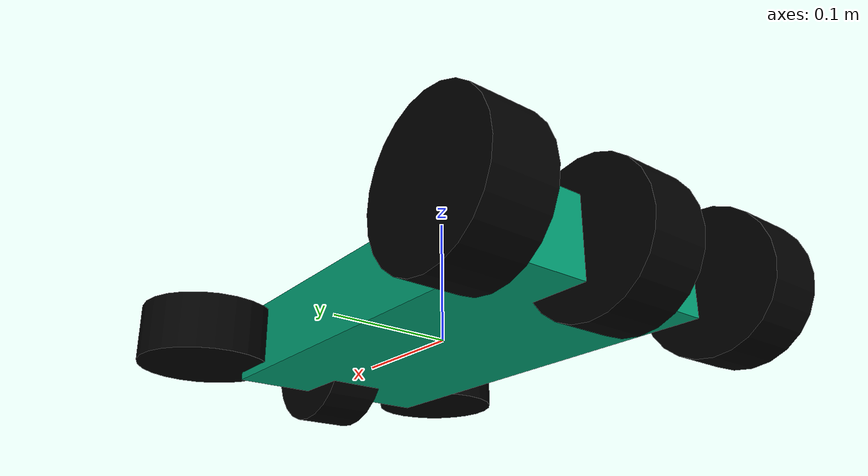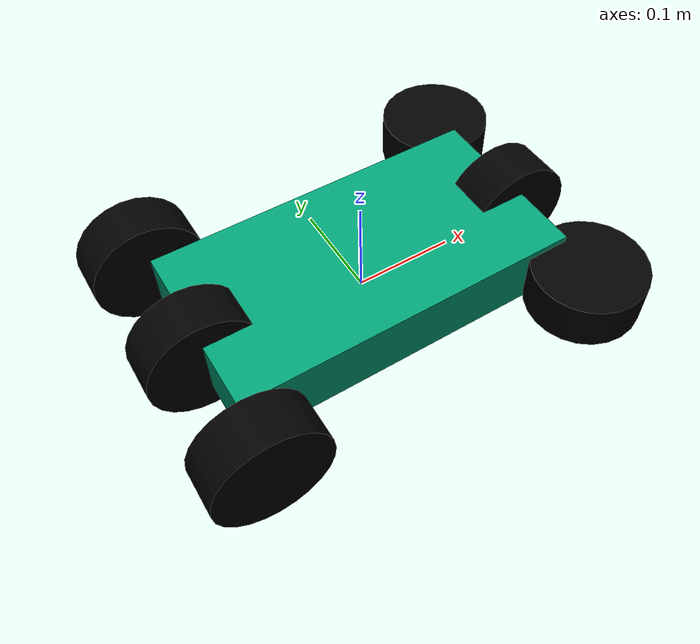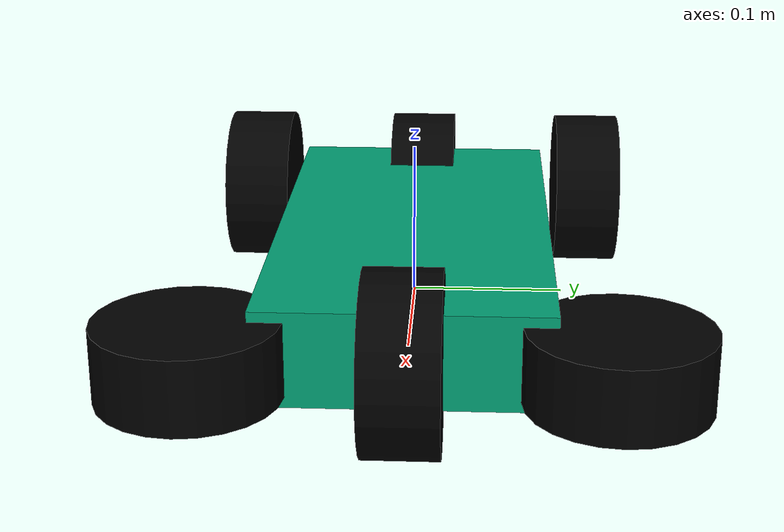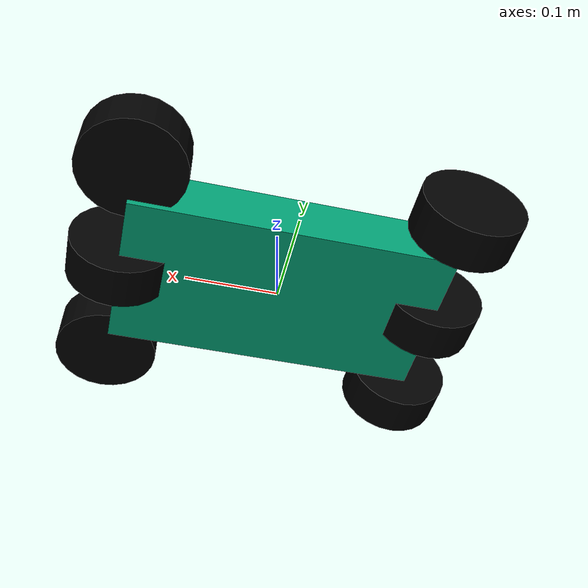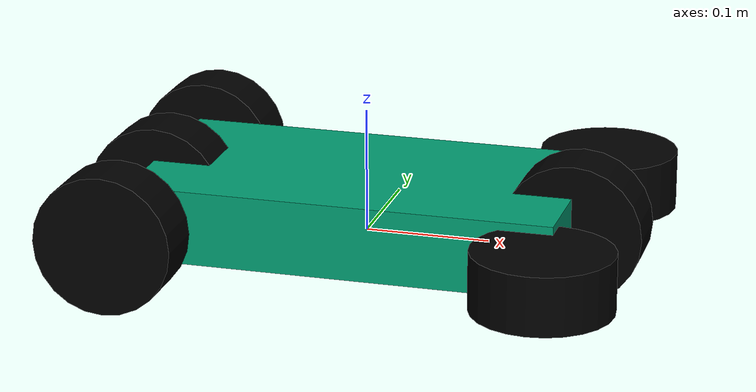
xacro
<?xml version="1.0"?>
<robot xmlns:controller="http://playerstage.sourceforge.net/gazebo/xmlschema/#controller">

  <gazebo>
    <controller:ros_p3d name="my_box_controller" plugin="libros_p3d.so">
      <alwaysOn>true</alwaysOn>
      <updateRate>100.0</updateRate>
      <bodyName>my_box</bodyName>
      <topicName>my_box_pose_ground_truth</topicName>
      <gaussianNoise>0.0</gaussianNoise>
      <frameName>my_box</frameName>
      <interface:position name="my_box_p3d_position_iface" />
    </controller:ros_p3d>
  </gazebo>

  <xacro:include filename="inertial_macros.xacro" />

  <!-- car geometry -->
  <xacro:arg name="wheel_diameter" default="0.112" />
  <xacro:property name="wheel_radius" value="${$(arg wheel_diameter)/2}" />
  <xacro:property name="wheel_width" value="0.047" />
  <xacro:property name="wheel_friction" value="0.8" />
  <xacro:property name="wheelbase" value="0.3429" />
  <xacro:property name="track_width" value="0.25" />
  <xacro:property name="chassis_width" value="0.18" />
  <xacro:property name="wheel_mass" value="0.1" />
  <xacro:property name="total_mass" value="3.0" />
  <xacro:property name="shock_travel" value="0.09" />
  <xacro:property name="chassis_height" value="0.06" />
  <xacro:property name="chassis_elevation" value="-0.01" />
  <xacro:property name="chassis_mass" value="${total_mass-4*wheel_mass}" />

  <!-- Steering params -->
  <xacro:property name="steering_velocity" value="0.2" />
  <xacro:property name="steering_upper_limit" value="0.7" />
  <xacro:property name="steering_lower_limit" value="-0.7" />
  <xacro:property name="steering_effort" value="1000.0" />

  <!-- Base link -->
  <link name="base_link">
   <visual>
      <geometry>
        <cylinder length="0.001" radius="0.001" />
      </geometry>
      <material name="black">
        <color rgba="0 0 0 1" />
      </material>
    </visual>
    <collision>
      <geometry>
        <cylinder length="0.01" radius="0.01" />
      </geometry>
    </collision>
    <xacro:inertial_cylinder mass="0.001" radius="0.001" length="0.001">
      <origin xyz="0 0 0" rpy="0 0 0" />
    </xacro:inertial_cylinder>
  </link>

  <link name="base_footprint">
    <visual>
      <geometry>
        <cylinder length="0.001" radius="0.001" />
      </geometry>
      <material name="black">
        <color rgba="0 0 0 1" />
      </material>
    </visual>
    <collision>
      <geometry>
        <cylinder length="0.01" radius="0.01" />
      </geometry>
    </collision>
    <xacro:inertial_cylinder mass="0.001" radius="0.001" length="0.001">
      <origin xyz="0 0 0" rpy="0 0 0" />
    </xacro:inertial_cylinder>
  </link>

  <joint name="base_footprint_joint" type="fixed">
    <parent link="base_link" />
    <child link="base_footprint" />
    <origin rpy="0 0 0" xyz="0 0 0" />
  </joint>

  <!-- Chassis -->
  <link name="chassis_link">
    <visual>
      <geometry>
        <box size="${wheelbase} ${chassis_width} ${chassis_height}" />
      </geometry>
    </visual>
    <collision>
      <geometry>
        <box size="${wheelbase} ${chassis_width} ${chassis_height}" />
      </geometry>
    </collision>
    <xacro:inertial_box mass="${chassis_mass}" x="${wheelbase}" y="${chassis_width}" z="${chassis_height}">
      <origin xyz="0 0 0" rpy="0 0 0" />
    </xacro:inertial_box>
  </link>

  <joint name="chassis_joint" type="fixed">
    <parent link="base_link" />
    <child link="chassis_link" />
    <origin rpy="0 0 0" xyz="0 0 ${chassis_height/2 + chassis_elevation}" />
  </joint>

  <!-- Back central wheel -->
  <link name="back_central_wheel">
    <visual>
      <geometry>
        <cylinder length="${wheel_width}" radius="${wheel_radius}" />
      </geometry>
      <material name="black">
        <color rgba="0 0 0 1" />
      </material>
    </visual>
    <collision>
      <geometry>
        <cylinder length="${wheel_width}" radius="${wheel_radius}" />
      </geometry>
    </collision>
    <xacro:inertial_cylinder mass="${wheel_mass}" radius="${wheel_radius}" length="${wheel_width}">
      <origin xyz="0 0 0" rpy="0 0 0" />
    </xacro:inertial_cylinder>
  </link>

  <joint name="back_central_wheel_joint" type="continuous">
    <parent link="chassis_link" />
    <child link="back_central_wheel" />
    <axis xyz="0 0 1" />
    <origin rpy="${-pi/2} 0 0" xyz="-${wheelbase/2} 0 0" />
  </joint>

  <!-- Rear Left wheel -->
  <link name="back_left_wheel">
    <visual>
      <geometry>
        <cylinder length="${wheel_width}" radius="${wheel_radius}" />
      </geometry>
      <material name="black">
        <color rgba="0 0 0 1" />
      </material>
    </visual>
    <collision>
      <geometry>
        <sphere radius="${wheel_radius}" />
      </geometry>
    </collision>
    <xacro:inertial_cylinder mass="${wheel_mass}" radius="${wheel_radius}" length="${wheel_width}">
      <origin xyz="0 0 0" rpy="0 0 0" />
    </xacro:inertial_cylinder>
  </link>

  <joint name="back_left_wheel_joint" type="fixed">
    <parent link="chassis_link" />
    <child link="back_left_wheel" />
    <origin rpy="${-pi/2} 0 0" xyz="-${wheelbase/2} ${track_width/2} 0" />
  </joint>

  <!-- Rear right wheel -->
  <link name="back_right_wheel">
    <visual>
      <geometry>
        <cylinder length="${wheel_width}" radius="${wheel_radius}" />
      </geometry>
      <material name="black">
        <color rgba="0 0 0 1" />
      </material>
    </visual>
    <collision>
      <geometry>
        <sphere radius="${wheel_radius}" />
      </geometry>
    </collision>
    <xacro:inertial_cylinder mass="${wheel_mass}" radius="${wheel_radius}" length="${wheel_width}">
      <origin xyz="0 0 0" rpy="0 0 0" />
    </xacro:inertial_cylinder>
  </link>

  <joint name="back_right_wheel_joint" type="fixed">
    <parent link="chassis_link" />
    <child link="back_right_wheel" />
    <origin rpy="${pi/2} 0 0" xyz="-${wheelbase/2} -${track_width/2} 0" />
  </joint>

  <!-- front central steer -->
  <link name="front_central_steer">
    <visual>
      <geometry>
        <cylinder length="0.01" radius="0.01" />
      </geometry>
      <material name="black">
        <color rgba="0 0 0 1" />
      </material>
    </visual>
    <collision>
      <geometry>
        <cylinder length="0.01" radius="0.01" />
      </geometry>
    </collision>
    <xacro:inertial_cylinder mass="0.1" radius="0.01" length="0.01">
      <origin xyz="0 0 0" rpy="0 0 0" />
    </xacro:inertial_cylinder>
  </link>

  <link name="front_central_wheel">
    <visual>
      <geometry>
        <cylinder length="${wheel_width}" radius="${wheel_radius}" />
      </geometry>
      <material name="black">
        <color rgba="0 0 0 1" />
      </material>
    </visual>
    <collision>
      <geometry>
        <cylinder length="${wheel_width}" radius="${wheel_radius}" />
      </geometry>
    </collision>
    <xacro:inertial_cylinder mass="${wheel_mass}" radius="${wheel_radius}" length="${wheel_width}">
      <origin xyz="0 0 0" rpy="0 0 0" />
    </xacro:inertial_cylinder>
  </link>

  <joint name="front_central_steer_joint" type="revolute">
    <parent link="chassis_link" />
    <child link="front_central_steer" />
    <axis xyz="0 0 1" />
    <origin rpy="0 0 0" xyz="${wheelbase/2} 0 0" />
    <limit lower="${steering_lower_limit}" upper="${steering_upper_limit}" effort="${steering_effort}" velocity="${steering_velocity}" />
    <dynamics damping="0.0" friction="0.2" />
  </joint>

  <joint name="front_central_wheel_joint" type="continuous">
    <parent link="front_central_steer" />
    <child link="front_central_wheel" />
    <axis xyz="0 0 1" />
    <origin rpy="${-pi/2} 0 0" xyz="0 0 0" />
  </joint>

  <!-- front_left_ -->

  <link name="front_left_wheel">
    <visual>
      <geometry>
        <cylinder length="${wheel_width}" radius="${wheel_radius}" />
      </geometry>
      <material name="black">
        <color rgba="0 0 0 1" />
      </material>
    </visual>
    <collision>
      <geometry>
        <sphere radius="${wheel_radius}" />
      </geometry>
    </collision>
    <xacro:inertial_cylinder mass="${wheel_mass}" radius="${wheel_radius}" length="${wheel_width}">
      <origin xyz="0 0 0" rpy="0 0 0" />
    </xacro:inertial_cylinder>
  </link>

  <joint name="front_left_wheel_joint" type="fixed">
    <parent link="chassis_link" />
    <child link="front_left_wheel" />
    <origin rpy="0 0 0" xyz="${wheelbase/2} ${track_width/2} 0" />
  </joint>

  <!-- front_right -->
  <link name="front_right_wheel">
    <visual>
      <geometry>
        <cylinder length="${wheel_width}" radius="${wheel_radius}" />
      </geometry>
      <material name="black">
        <color rgba="0 0 0 1" />
      </material>
    </visual>
    <collision>
      <geometry>
        <sphere radius="${wheel_radius}" />
      </geometry>
    </collision>
    <xacro:inertial_cylinder mass="${wheel_mass}" radius="${wheel_radius}" length="${wheel_width}">
      <origin xyz="0 0 0" rpy="0 0 0" />
    </xacro:inertial_cylinder>
  </link>

  <joint name="front_right_wheel_joint" type="fixed">
    <parent link="chassis_link" />
    <child link="front_right_wheel" />
    <origin rpy="0 0 0" xyz="${wheelbase/2} -${track_width/2} 0" />
  </joint>

  <!-- Gazebo interface -->
  <gazebo reference="front_central_wheel">
    <mu1 value="${wheel_friction}" />
    <mu2 value="${wheel_friction}" />
    <material>Gazebo/DarkGrey</material>
  </gazebo>
  <gazebo reference="back_central_wheel">
    <mu1 value="${wheel_friction}" />
    <mu2 value="${wheel_friction}" />
    <material>Gazebo/DarkGrey</material>
  </gazebo>

  <gazebo reference="back_left_wheel">
    <mu1 value="0.0" />
    <mu2 value="0.0" />
    <material>Gazebo/DarkGrey</material>
  </gazebo>
  <gazebo reference="back_right_wheel">
    <mu1 value="0.0" />
    <mu2 value="0.0" />
    <material>Gazebo/DarkGrey</material>
  </gazebo>
  <gazebo reference="front_left_wheel">
    <mu1 value="0.0" />
    <mu2 value="0.0" />
    <material>Gazebo/DarkGrey</material>
  </gazebo>
  <gazebo reference="front_right_wheel">
    <mu1 value="0.0" />
    <mu2 value="0.0" />
    <material>Gazebo/DarkGrey</material>
  </gazebo>

</robot>
